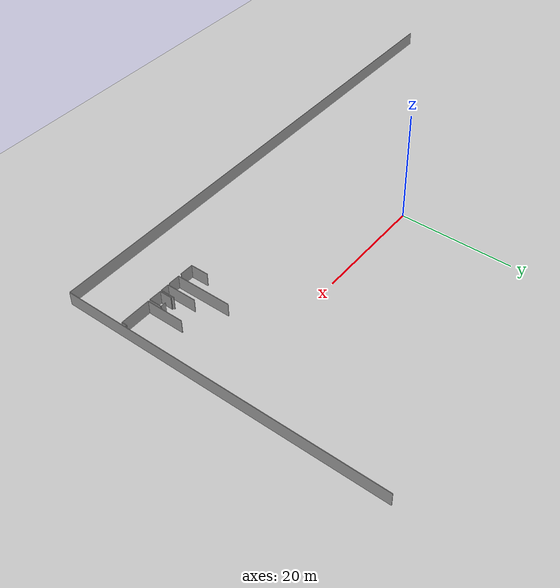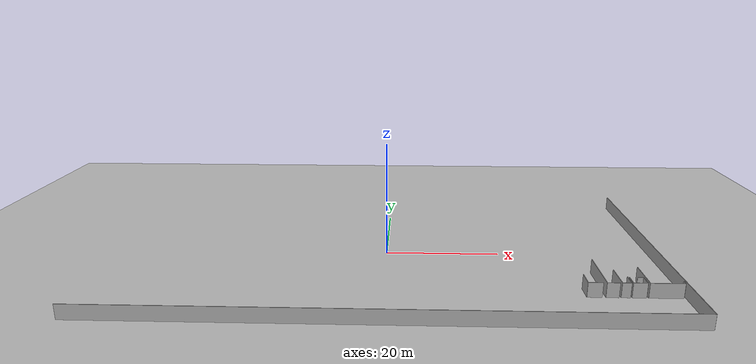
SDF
<sdf version="1.6">
 <world name="default">
  <model name="ground_plane">
   <static>1</static>
   <link name="link">
    <collision name="collision">
     <geometry><plane><normal>0 0 1</normal><size>100 100</size></plane></geometry>
     <surface><friction><ode><mu>100</mu><mu2>50</mu2></ode></friction></surface>
    </collision>
    <visual name="visual">
     <cast_shadows>0</cast_shadows>
     <geometry><plane><normal>0 0 1</normal><size>100 100</size></plane></geometry>
     <material>
      <script><uri>file://media/materials/scripts/gazebo.material</uri><name>Gazebo/Grey</name></script>
     </material>
    </visual>
   </link>
  </model>
  <model name="50045228">
   <static>1</static>
   <link name="Wall_216">
    <collision name="Wall_216_Collision">
     <geometry><box><size>9.81459516032 0.1 2.5</size></box></geometry>
     <pose>4.90729758016 0 1.25 0 0 0</pose>
    </collision>
    <visual name="Wall_216_Visual">
     <pose>4.90729758016 0 1.25 0 0 0</pose>
     <geometry><box><size>9.81459516032 0.1 2.5</size></box></geometry>
     <material>
      <script><uri>file://media/materials/scripts/gazebo.material</uri><name>Gazebo/Grey</name></script>
      <ambient>1 1 1 1</ambient>
     </material>
    </visual>
    <pose>81.5353778821 -46.6377850369 0 0 0 1.57079632679</pose>
   </link>
   <link name="Wall_220">
    <collision name="Wall_220_Collision">
     <geometry><box><size>1.99668268854 0.1 2.5</size></box></geometry>
     <pose>0.99834134427 0 1.25 0 0 0</pose>
    </collision>
    <visual name="Wall_220_Visual">
     <pose>0.99834134427 0 1.25 0 0 0</pose>
     <geometry><box><size>1.99668268854 0.1 2.5</size></box></geometry>
     <material>
      <script><uri>file://media/materials/scripts/gazebo.material</uri><name>Gazebo/Grey</name></script>
      <ambient>1 1 1 1</ambient>
     </material>
    </visual>
    <pose>83.5317623926 -46.6722907615 0 0 0 3.12431026692</pose>
   </link>
   <link name="Wall_221">
    <collision name="Wall_221_Collision">
     <geometry><box><size>6.58107893819 0.1 2.5</size></box></geometry>
     <pose>3.29053946909 0 1.25 0 0 0</pose>
    </collision>
    <visual name="Wall_221_Visual">
     <pose>3.29053946909 0 1.25 0 0 0</pose>
     <geometry><box><size>6.58107893819 0.1 2.5</size></box></geometry>
     <material>
      <script><uri>file://media/materials/scripts/gazebo.material</uri><name>Gazebo/Grey</name></script>
      <ambient>1 1 1 1</ambient>
     </material>
    </visual>
    <pose>88.0920998383 -46.6235767974 0 0 0 1.57079632679</pose>
   </link>
   <link name="Wall_229">
    <collision name="Wall_229_Collision">
     <geometry><box><size>0.189654625607 0.1 2.5</size></box></geometry>
     <pose>0.0948273128033 0 1.25 0 0 0</pose>
    </collision>
    <visual name="Wall_229_Visual">
     <pose>0.0948273128033 0 1.25 0 0 0</pose>
     <geometry><box><size>0.189654625607 0.1 2.5</size></box></geometry>
     <material>
      <script><uri>file://media/materials/scripts/gazebo.material</uri><name>Gazebo/Grey</name></script>
      <ambient>1 1 1 1</ambient>
     </material>
    </visual>
    <pose>93.646252894 -45.7289651454 0 0 0 3.14159265359</pose>
   </link>
   <link name="Wall_230">
    <collision name="Wall_230_Collision">
     <geometry><box><size>0.919095493324 0.1 2.5</size></box></geometry>
     <pose>0.459547746662 0 1.25 0 0 0</pose>
    </collision>
    <visual name="Wall_230_Visual">
     <pose>0.459547746662 0 1.25 0 0 0</pose>
     <geometry><box><size>0.919095493324 0.1 2.5</size></box></geometry>
     <material>
      <script><uri>file://media/materials/scripts/gazebo.material</uri><name>Gazebo/Grey</name></script>
      <ambient>1 1 1 1</ambient>
     </material>
    </visual>
    <pose>93.4565982684 -45.7289651454 0 0 0 -1.57079632679</pose>
   </link>
   <link name="Wall_231">
    <collision name="Wall_231_Collision">
     <geometry><box><size>5.36455430257 0.1 2.5</size></box></geometry>
     <pose>2.68227715128 0 1.25 0 0 0</pose>
    </collision>
    <visual name="Wall_231_Visual">
     <pose>2.68227715128 0 1.25 0 0 0</pose>
     <geometry><box><size>5.36455430257 0.1 2.5</size></box></geometry>
     <material>
      <script><uri>file://media/materials/scripts/gazebo.material</uri><name>Gazebo/Grey</name></script>
      <ambient>1 1 1 1</ambient>
     </material>
    </visual>
    <pose>93.4565982684 -46.6480606387 0 0 0 3.13702863486</pose>
   </link>
   <link name="Wall_232">
    <collision name="Wall_232_Collision">
     <geometry><box><size>5.27163743617 0.1 2.5</size></box></geometry>
     <pose>2.63581871809 0 1.25 0 0 0</pose>
    </collision>
    <visual name="Wall_232_Visual">
     <pose>2.63581871809 0 1.25 0 0 0</pose>
     <geometry><box><size>5.27163743617 0.1 2.5</size></box></geometry>
     <material>
      <script><uri>file://media/materials/scripts/gazebo.material</uri><name>Gazebo/Grey</name></script>
      <ambient>1 1 1 1</ambient>
     </material>
    </visual>
    <pose>83.8571564492 -46.618883004 0 0 0 1.57079632679</pose>
   </link>
   <link name="Wall_242">
    <collision name="Wall_242_Collision">
     <geometry><box><size>2.52488027655 0.1 2.5</size></box></geometry>
     <pose>1.26244013828 0 1.25 0 0 0</pose>
    </collision>
    <visual name="Wall_242_Visual">
     <pose>1.26244013828 0 1.25 0 0 0</pose>
     <geometry><box><size>2.52488027655 0.1 2.5</size></box></geometry>
     <material>
      <script><uri>file://media/materials/scripts/gazebo.material</uri><name>Gazebo/Grey</name></script>
      <ambient>1 1 1 1</ambient>
     </material>
    </visual>
    <pose>85.296374996 -44.0998382544 0 0 0 -1.57079632679</pose>
   </link>
   <link name="Wall_243">
    <collision name="Wall_243_Collision">
     <geometry><box><size>1.43923037729 0.1 2.5</size></box></geometry>
     <pose>0.719615188643 0 1.25 0 0 0</pose>
    </collision>
    <visual name="Wall_243_Visual">
     <pose>0.719615188643 0 1.25 0 0 0</pose>
     <geometry><box><size>1.43923037729 0.1 2.5</size></box></geometry>
     <material>
      <script><uri>file://media/materials/scripts/gazebo.material</uri><name>Gazebo/Grey</name></script>
      <ambient>1 1 1 1</ambient>
     </material>
    </visual>
    <pose>85.296374996 -46.624718531 0 0 0 3.13753802618</pose>
   </link>
   <link name="Wall_244">
    <collision name="Wall_244_Collision">
     <geometry><box><size>2.20291142051 0.1 2.5</size></box></geometry>
     <pose>1.10145571025 0 1.25 0 0 0</pose>
    </collision>
    <visual name="Wall_244_Visual">
     <pose>1.10145571025 0 1.25 0 0 0</pose>
     <geometry><box><size>2.20291142051 0.1 2.5</size></box></geometry>
     <material>
      <script><uri>file://media/materials/scripts/gazebo.material</uri><name>Gazebo/Grey</name></script>
      <ambient>1 1 1 1</ambient>
     </material>
    </visual>
    <pose>85.5494592623 -46.5897053693 0 0 0 1.57079632679</pose>
   </link>
   <link name="Wall_245">
    <collision name="Wall_245_Collision">
     <geometry><box><size>0.0922266975358 0.1 2.5</size></box></geometry>
     <pose>0.0461133487679 0 1.25 0 0 0</pose>
    </collision>
    <visual name="Wall_245_Visual">
     <pose>0.0461133487679 0 1.25 0 0 0</pose>
     <geometry><box><size>0.0922266975358 0.1 2.5</size></box></geometry>
     <material>
      <script><uri>file://media/materials/scripts/gazebo.material</uri><name>Gazebo/Grey</name></script>
      <ambient>1 1 1 1</ambient>
     </material>
    </visual>
    <pose>85.5494592623 -44.3867939488 0 0 0 0.0</pose>
   </link>
   <link name="Wall_246">
    <collision name="Wall_246_Collision">
     <geometry><box><size>0.937743807681 0.1 2.5</size></box></geometry>
     <pose>0.468871903841 0 1.25 0 0 0</pose>
    </collision>
    <visual name="Wall_246_Visual">
     <pose>0.468871903841 0 1.25 0 0 0</pose>
     <geometry><box><size>0.937743807681 0.1 2.5</size></box></geometry>
     <material>
      <script><uri>file://media/materials/scripts/gazebo.material</uri><name>Gazebo/Grey</name></script>
      <ambient>1 1 1 1</ambient>
     </material>
    </visual>
    <pose>86.8119628302 -44.3867939488 0 0 0 0.0</pose>
   </link>
   <link name="Wall_247">
    <collision name="Wall_247_Collision">
     <geometry><box><size>2.26342329771 0.1 2.5</size></box></geometry>
     <pose>1.13171164885 0 1.25 0 0 0</pose>
    </collision>
    <visual name="Wall_247_Visual">
     <pose>1.13171164885 0 1.25 0 0 0</pose>
     <geometry><box><size>2.26342329771 0.1 2.5</size></box></geometry>
     <material>
      <script><uri>file://media/materials/scripts/gazebo.material</uri><name>Gazebo/Grey</name></script>
      <ambient>1 1 1 1</ambient>
     </material>
    </visual>
    <pose>87.7497066379 -44.3867939488 0 0 0 -1.57079632679</pose>
   </link>
   <link name="Wall_248">
    <collision name="Wall_248_Collision">
     <geometry><box><size>2.2010793264 0.1 2.5</size></box></geometry>
     <pose>1.1005396632 0 1.25 0 0 0</pose>
    </collision>
    <visual name="Wall_248_Visual">
     <pose>1.1005396632 0 1.25 0 0 0</pose>
     <geometry><box><size>2.2010793264 0.1 2.5</size></box></geometry>
     <material>
      <script><uri>file://media/materials/scripts/gazebo.material</uri><name>Gazebo/Grey</name></script>
      <ambient>1 1 1 1</ambient>
     </material>
    </visual>
    <pose>87.7497066379 -46.6502172465 0 0 0 3.11409727821</pose>
   </link>
   <link name="Wall_263">
    <collision name="Wall_263_Collision">
     <geometry><box><size>3.16602708446 0.1 2.5</size></box></geometry>
     <pose>1.58301354223 0 1.25 0 0 0</pose>
    </collision>
    <visual name="Wall_263_Visual">
     <pose>1.58301354223 0 1.25 0 0 0</pose>
     <geometry><box><size>3.16602708446 0.1 2.5</size></box></geometry>
     <material>
      <script><uri>file://media/materials/scripts/gazebo.material</uri><name>Gazebo/Grey</name></script>
      <ambient>1 1 1 1</ambient>
     </material>
    </visual>
    <pose>78.6048016238 -46.6281437316 0 0 0 1.57079632679</pose>
   </link>
   <link name="Wall_267">
    <collision name="Wall_267_Collision">
     <geometry><box><size>2.34453108873 0.1 2.5</size></box></geometry>
     <pose>1.17226554437 0 1.25 0 0 0</pose>
    </collision>
    <visual name="Wall_267_Visual">
     <pose>1.17226554437 0 1.25 0 0 0</pose>
     <geometry><box><size>2.34453108873 0.1 2.5</size></box></geometry>
     <material>
      <script><uri>file://media/materials/scripts/gazebo.material</uri><name>Gazebo/Grey</name></script>
      <ambient>1 1 1 1</ambient>
     </material>
    </visual>
    <pose>80.9489074244 -46.6727981986 0 0 0 3.1225452767</pose>
   </link>
   <link name="Wall_435">
    <collision name="Wall_435_Collision">
     <geometry><box><size>57.1754781009 0.1 2.5</size></box></geometry>
     <pose>28.5877390505 0 1.25 0 0 0</pose>
    </collision>
    <visual name="Wall_435_Visual">
     <pose>28.5877390505 0 1.25 0 0 0</pose>
     <geometry><box><size>57.1754781009 0.1 2.5</size></box></geometry>
     <material>
      <script><uri>file://media/materials/scripts/gazebo.material</uri><name>Gazebo/Grey</name></script>
      <ambient>1 1 1 1</ambient>
     </material>
    </visual>
    <pose>93.8067298849 -57.1754781009 0 0 0 1.57079632679</pose>
   </link>
   <link name="Wall_436">
    <collision name="Wall_436_Collision">
     <geometry><box><size>93.8067298849 0.1 2.5</size></box></geometry>
     <pose>46.9033649424 0 1.25 0 0 0</pose>
    </collision>
    <visual name="Wall_436_Visual">
     <pose>46.9033649424 0 1.25 0 0 0</pose>
     <geometry><box><size>93.8067298849 0.1 2.5</size></box></geometry>
     <material>
      <script><uri>file://media/materials/scripts/gazebo.material</uri><name>Gazebo/Grey</name></script>
      <ambient>1 1 1 1</ambient>
     </material>
    </visual>
    <pose>93.8067298849 -57.1754781009 0 0 0 3.14159265359</pose>
   </link>
   <pose>-46.9 28.5754781009 0 0 0 0</pose>
  </model>
 </world>
</sdf>
